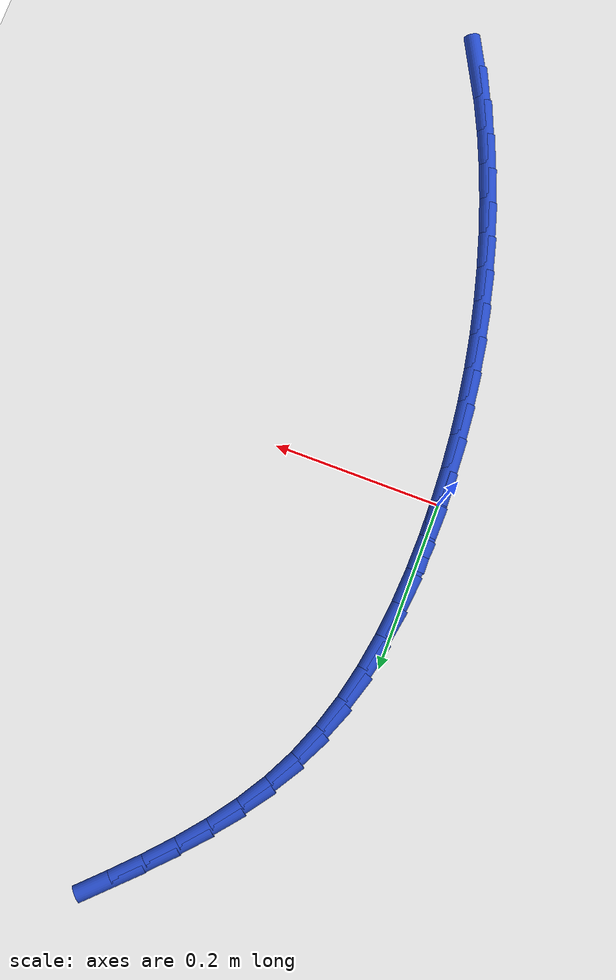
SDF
<sdf version="1.6">
 <world name="default">
  <model name="ground_plane">
   <static>1</static>
   <link name="link">
    <collision name="collision">
     <geometry><plane><normal>0 0 1</normal><size>100 100</size></plane></geometry>
     <surface><friction><ode><mu>100</mu><mu2>50</mu2></ode></friction></surface>
    </collision>
    <visual name="visual">
     <cast_shadows>0</cast_shadows>
     <geometry><plane><normal>0 0 1</normal><size>100 100</size></plane></geometry>
     <material>
      <script><uri>file://media/materials/scripts/gazebo.material</uri><name>Gazebo/WhiteGlow</name></script>
     </material>
    </visual>
   </link>
  </model>
  <model name="line">
   <link name="link_0">
    <pose>-3.209238430557093e-17 1.1102230246251565e-16 0.01 0 1.57 -1.5560850111418287</pose>
    <collision name="collision">
     <geometry><cylinder><radius>0.01</radius><length>0.08</length></cylinder></geometry>
    </collision>
    <visual name="visual">
     <material>
      <script><name>Gazebo/Blue</name><uri>file://media/materials/scripts/gazebo.material</uri></script>
     </material>
     <geometry><cylinder><radius>0.01</radius><length>0.08</length></cylinder></geometry>
    </visual>
   </link>
   <link name="link_1">
    <pose>-0.0006134665959751895 0.04169731339794919 0.01 0 1.57 1.5482634742002266</pose>
    <collision name="collision">
     <geometry><cylinder><radius>0.01</radius><length>0.08</length></cylinder></geometry>
    </collision>
    <visual name="visual">
     <material>
      <script><name>Gazebo/Blue</name><uri>file://media/materials/scripts/gazebo.material</uri></script>
     </material>
     <geometry><cylinder><radius>0.01</radius><length>0.08</length></cylinder></geometry>
    </visual>
   </link>
   <link name="link_2">
    <pose>0.00033184914600642207 0.08364299002199375 0.01 0 1.57 1.5054730850666602</pose>
    <collision name="collision">
     <geometry><cylinder><radius>0.01</radius><length>0.08</length></cylinder></geometry>
    </collision>
    <visual name="visual">
     <material>
      <script><name>Gazebo/Blue</name><uri>file://media/materials/scripts/gazebo.material</uri></script>
     </material>
     <geometry><cylinder><radius>0.01</radius><length>0.08</length></cylinder></geometry>
    </visual>
   </link>
   <link name="link_3">
    <pose>0.003073877823221967 0.12555957745616575 0.01 0 1.57 1.4565005141774403</pose>
    <collision name="collision">
     <geometry><cylinder><radius>0.01</radius><length>0.08</length></cylinder></geometry>
    </collision>
    <visual name="visual">
     <material>
      <script><name>Gazebo/Blue</name><uri>file://media/materials/scripts/gazebo.material</uri></script>
     </material>
     <geometry><cylinder><radius>0.01</radius><length>0.08</length></cylinder></geometry>
    </visual>
   </link>
   <link name="link_4">
    <pose>0.007850550032948614 0.16716962328449717 0.01 0 1.57 1.4006342696999396</pose>
    <collision name="collision">
     <geometry><cylinder><radius>0.01</radius><length>0.08</length></cylinder></geometry>
    </collision>
    <visual name="visual">
     <material>
      <script><name>Gazebo/Blue</name><uri>file://media/materials/scripts/gazebo.material</uri></script>
     </material>
     <geometry><cylinder><radius>0.01</radius><length>0.08</length></cylinder></geometry>
    </visual>
   </link>
   <link name="link_5">
    <pose>0.014899796372463523 0.20819567509101997 0.01 0 1.57 1.33712972828409</pose>
    <collision name="collision">
     <geometry><cylinder><radius>0.01</radius><length>0.08</length></cylinder></geometry>
    </collision>
    <visual name="visual">
     <material>
      <script><name>Gazebo/Blue</name><uri>file://media/materials/scripts/gazebo.material</uri></script>
     </material>
     <geometry><cylinder><radius>0.01</radius><length>0.08</length></cylinder></geometry>
    </visual>
   </link>
   <link name="link_6">
    <pose>0.02445954743904385 0.24836028045976608 0.01 0 1.57 1.2652838038453469</pose>
    <collision name="collision">
     <geometry><cylinder><radius>0.01</radius><length>0.08</length></cylinder></geometry>
    </collision>
    <visual name="visual">
     <material>
      <script><name>Gazebo/Blue</name><uri>file://media/materials/scripts/gazebo.material</uri></script>
     </material>
     <geometry><cylinder><radius>0.01</radius><length>0.08</length></cylinder></geometry>
    </visual>
   </link>
   <link name="link_7">
    <pose>0.03676773382996677 0.2873859869747674 0.01 0 1.57 1.1845542153875608</pose>
    <collision name="collision">
     <geometry><cylinder><radius>0.01</radius><length>0.08</length></cylinder></geometry>
    </collision>
    <visual name="visual">
     <material>
      <script><name>Gazebo/Blue</name><uri>file://media/materials/scripts/gazebo.material</uri></script>
     </material>
     <geometry><cylinder><radius>0.01</radius><length>0.08</length></cylinder></geometry>
    </visual>
   </link>
   <link name="link_8">
    <pose>0.05206228614250945 0.32499534222005594 0.01 0 1.57 1.095259763297356</pose>
    <collision name="collision">
     <geometry><cylinder><radius>0.01</radius><length>0.08</length></cylinder></geometry>
    </collision>
    <visual name="visual">
     <material>
      <script><name>Gazebo/Blue</name><uri>file://media/materials/scripts/gazebo.material</uri></script>
     </material>
     <geometry><cylinder><radius>0.01</radius><length>0.08</length></cylinder></geometry>
    </visual>
   </link>
   <link name="link_9">
    <pose>0.07056377270829704 0.36092399320830526 0.01 0 1.57 1.0083837204269441</pose>
    <collision name="collision">
     <geometry><cylinder><radius>0.01</radius><length>0.08</length></cylinder></geometry>
    </collision>
    <visual name="visual">
     <material>
      <script><name>Gazebo/Blue</name><uri>file://media/materials/scripts/gazebo.material</uri></script>
     </material>
     <geometry><cylinder><radius>0.01</radius><length>0.08</length></cylinder></geometry>
    </visual>
   </link>
   <link name="link_10">
    <pose>0.09214807780678616 0.39516764311281943 0.01 0 1.57 0.9345323404183119</pose>
    <collision name="collision">
     <geometry><cylinder><radius>0.01</radius><length>0.08</length></cylinder></geometry>
    </collision>
    <visual name="visual">
     <material>
      <script><name>Gazebo/Blue</name><uri>file://media/materials/scripts/gazebo.material</uri></script>
     </material>
     <geometry><cylinder><radius>0.01</radius><length>0.08</length></cylinder></geometry>
    </visual>
   </link>
   <link name="link_11">
    <pose>0.11637427786301774 0.4279610193198251 0.01 0 1.57 0.8743204340232672</pose>
    <collision name="collision">
     <geometry><cylinder><radius>0.01</radius><length>0.08</length></cylinder></geometry>
    </collision>
    <visual name="visual">
     <material>
      <script><name>Gazebo/Blue</name><uri>file://media/materials/scripts/gazebo.material</uri></script>
     </material>
     <geometry><cylinder><radius>0.01</radius><length>0.08</length></cylinder></geometry>
    </visual>
   </link>
   <link name="link_12">
    <pose>0.14278967470873452 0.45954773287438694 0.01 0 1.57 0.8274277241909768</pose>
    <collision name="collision">
     <geometry><cylinder><radius>0.01</radius><length>0.08</length></cylinder></geometry>
    </collision>
    <visual name="visual">
     <material>
      <script><name>Gazebo/Blue</name><uri>file://media/materials/scripts/gazebo.material</uri></script>
     </material>
     <geometry><cylinder><radius>0.01</radius><length>0.08</length></cylinder></geometry>
    </visual>
   </link>
   <link name="link_13">
    <pose>0.17094157017567937 0.4901713948215696 0.01 0 1.57 0.7932936197868176</pose>
    <collision name="collision">
     <geometry><cylinder><radius>0.01</radius><length>0.08</length></cylinder></geometry>
    </collision>
    <visual name="visual">
     <material>
      <script><name>Gazebo/Blue</name><uri>file://media/materials/scripts/gazebo.material</uri></script>
     </material>
     <geometry><cylinder><radius>0.01</radius><length>0.08</length></cylinder></geometry>
    </visual>
   </link>
   <link name="link_14">
    <pose>0.20037726609559484 0.5200756162064372 0.01 0 1.57 0.7713542979603596</pose>
    <collision name="collision">
     <geometry><cylinder><radius>0.01</radius><length>0.08</length></cylinder></geometry>
    </collision>
    <visual name="visual">
     <material>
      <script><name>Gazebo/Blue</name><uri>file://media/materials/scripts/gazebo.material</uri></script>
     </material>
     <geometry><cylinder><radius>0.01</radius><length>0.08</length></cylinder></geometry>
    </visual>
   </link>
   <link name="link_167">
    <pose>0.13648654570182445 -0.5202485936370101 0.01 0 1.57 -1.082648016553438</pose>
    <collision name="collision">
     <geometry><cylinder><radius>0.01</radius><length>0.08</length></cylinder></geometry>
    </collision>
    <visual name="visual">
     <material>
      <script><name>Gazebo/Blue</name><uri>file://media/materials/scripts/gazebo.material</uri></script>
     </material>
     <geometry><cylinder><radius>0.01</radius><length>0.08</length></cylinder></geometry>
    </visual>
   </link>
   <link name="link_168">
    <pose>0.1166303889388797 -0.4828555457564914 0.01 0 1.57 -1.1364977704029393</pose>
    <collision name="collision">
     <geometry><cylinder><radius>0.01</radius><length>0.08</length></cylinder></geometry>
    </collision>
    <visual name="visual">
     <material>
      <script><name>Gazebo/Blue</name><uri>file://media/materials/scripts/gazebo.material</uri></script>
     </material>
     <geometry><cylinder><radius>0.01</radius><length>0.08</length></cylinder></geometry>
    </visual>
   </link>
   <link name="link_169">
    <pose>0.09857916880191886 -0.44393813257126613 0.01 0 1.57 -1.1823805998426171</pose>
    <collision name="collision">
     <geometry><cylinder><radius>0.01</radius><length>0.08</length></cylinder></geometry>
    </collision>
    <visual name="visual">
     <material>
      <script><name>Gazebo/Blue</name><uri>file://media/materials/scripts/gazebo.material</uri></script>
     </material>
     <geometry><cylinder><radius>0.01</radius><length>0.08</length></cylinder></geometry>
    </visual>
   </link>
   <link name="link_170">
    <pose>0.08223921821292376 -0.4040070852022042 0.01 0 1.57 -1.2216083228894679</pose>
    <collision name="collision">
     <geometry><cylinder><radius>0.01</radius><length>0.08</length></cylinder></geometry>
    </collision>
    <visual name="visual">
     <material>
      <script><name>Gazebo/Blue</name><uri>file://media/materials/scripts/gazebo.material</uri></script>
     </material>
     <geometry><cylinder><radius>0.01</radius><length>0.08</length></cylinder></geometry>
    </visual>
   </link>
   <link name="link_171">
    <pose>0.06751687009387741 -0.3635731347701784 0.01 0 1.57 -1.2553285011674669</pose>
    <collision name="collision">
     <geometry><cylinder><radius>0.01</radius><length>0.08</length></cylinder></geometry>
    </collision>
    <visual name="visual">
     <material>
      <script><name>Gazebo/Blue</name><uri>file://media/materials/scripts/gazebo.material</uri></script>
     </material>
     <geometry><cylinder><radius>0.01</radius><length>0.08</length></cylinder></geometry>
    </visual>
   </link>
   <link name="link_172">
    <pose>0.054319745801484784 -0.3231366830456082 0.01 0 1.57 -1.2870066244291343</pose>
    <collision name="collision">
     <geometry><cylinder><radius>0.01</radius><length>0.08</length></cylinder></geometry>
    </collision>
    <visual name="visual">
     <material>
      <script><name>Gazebo/Blue</name><uri>file://media/materials/scripts/gazebo.material</uri></script>
     </material>
     <geometry><cylinder><radius>0.01</radius><length>0.08</length></cylinder></geometry>
    </visual>
   </link>
   <link name="link_173">
    <pose>0.04259013338792632 -0.2829202097279961 0.01 0 1.57 -1.3196508840893297</pose>
    <collision name="collision">
     <geometry><cylinder><radius>0.01</radius><length>0.08</length></cylinder></geometry>
    </collision>
    <visual name="visual">
     <material>
      <script><name>Gazebo/Blue</name><uri>file://media/materials/scripts/gazebo.material</uri></script>
     </material>
     <geometry><cylinder><radius>0.01</radius><length>0.08</length></cylinder></geometry>
    </visual>
   </link>
   <link name="link_174">
    <pose>0.03230803795344517 -0.24284381784197392 0.01 0 1.57 -1.3531560256674982</pose>
    <collision name="collision">
     <geometry><cylinder><radius>0.01</radius><length>0.08</length></cylinder></geometry>
    </collision>
    <visual name="visual">
     <material>
      <script><name>Gazebo/Blue</name><uri>file://media/materials/scripts/gazebo.material</uri></script>
     </material>
     <geometry><cylinder><radius>0.01</radius><length>0.08</length></cylinder></geometry>
    </visual>
   </link>
   <link name="link_175">
    <pose>0.023455364463984513 -0.2028123792341626 0.01 0 1.57 -1.387231439946864</pose>
    <collision name="collision">
     <geometry><cylinder><radius>0.01</radius><length>0.08</length></cylinder></geometry>
    </collision>
    <visual name="visual">
     <material>
      <script><name>Gazebo/Blue</name><uri>file://media/materials/scripts/gazebo.material</uri></script>
     </material>
     <geometry><cylinder><radius>0.01</radius><length>0.08</length></cylinder></geometry>
    </visual>
   </link>
   <link name="link_176">
    <pose>0.016014017885487387 -0.16273076575118214 0.01 0 1.57 -1.4215641518661513</pose>
    <collision name="collision">
     <geometry><cylinder><radius>0.01</radius><length>0.08</length></cylinder></geometry>
    </collision>
    <visual name="visual">
     <material>
      <script><name>Gazebo/Blue</name><uri>file://media/materials/scripts/gazebo.material</uri></script>
     </material>
     <geometry><cylinder><radius>0.01</radius><length>0.08</length></cylinder></geometry>
    </visual>
   </link>
   <link name="link_177">
    <pose>0.009965903183897286 -0.1225038492396552 0.01 0 1.57 -1.4558302598015243</pose>
    <collision name="collision">
     <geometry><cylinder><radius>0.01</radius><length>0.08</length></cylinder></geometry>
    </collision>
    <visual name="visual">
     <material>
      <script><name>Gazebo/Blue</name><uri>file://media/materials/scripts/gazebo.material</uri></script>
     </material>
     <geometry><cylinder><radius>0.01</radius><length>0.08</length></cylinder></geometry>
    </visual>
   </link>
   <link name="link_178">
    <pose>0.005292925325157227 -0.08203650154620189 0.01 0 1.57 -1.4897073747023273</pose>
    <collision name="collision">
     <geometry><cylinder><radius>0.01</radius><length>0.08</length></cylinder></geometry>
    </collision>
    <visual name="visual">
     <material>
      <script><name>Gazebo/Blue</name><uri>file://media/materials/scripts/gazebo.material</uri></script>
     </material>
     <geometry><cylinder><radius>0.01</radius><length>0.08</length></cylinder></geometry>
    </visual>
   </link>
   <link name="link_179">
    <pose>0.0019769892752103954 -0.04123359451744317 0.01 0 1.57 -1.5228869348090577</pose>
    <collision name="collision">
     <geometry><cylinder><radius>0.01</radius><length>0.08</length></cylinder></geometry>
    </collision>
    <visual name="visual">
     <material>
      <script><name>Gazebo/Blue</name><uri>file://media/materials/scripts/gazebo.material</uri></script>
     </material>
     <geometry><cylinder><radius>0.01</radius><length>0.08</length></cylinder></geometry>
    </visual>
   </link>
   <link name="link_180">
    <pose>-2.42861286636753e-17 4.163336342344337e-17 0.01 0 1.57 -1.555085291967529</pose>
    <collision name="collision">
     <geometry><cylinder><radius>0.01</radius><length>0.08</length></cylinder></geometry>
    </collision>
    <visual name="visual">
     <material>
      <script><name>Gazebo/Blue</name><uri>file://media/materials/scripts/gazebo.material</uri></script>
     </material>
     <geometry><cylinder><radius>0.01</radius><length>0.08</length></cylinder></geometry>
    </visual>
   </link>
   <link name="link_181">
    <pose>-0.0006561375345308443 0.04175941015950681 0.01 0 1.57 -1.555085291967529</pose>
    <collision name="collision">
     <geometry><cylinder><radius>0.01</radius><length>0.08</length></cylinder></geometry>
    </collision>
    <visual name="visual">
     <material>
      <script><name>Gazebo/Blue</name><uri>file://media/materials/scripts/gazebo.material</uri></script>
     </material>
     <geometry><cylinder><radius>0.01</radius><length>0.08</length></cylinder></geometry>
    </visual>
   </link>
  </model>
 </world>
</sdf>
